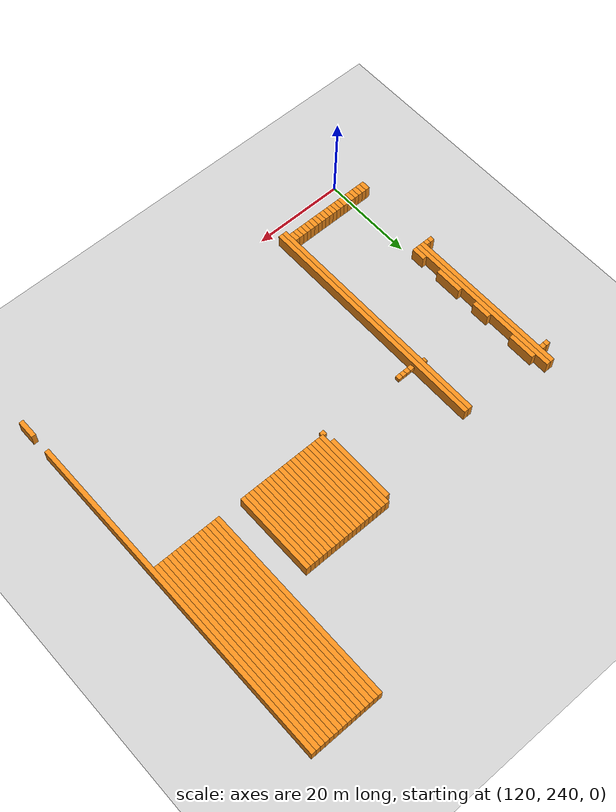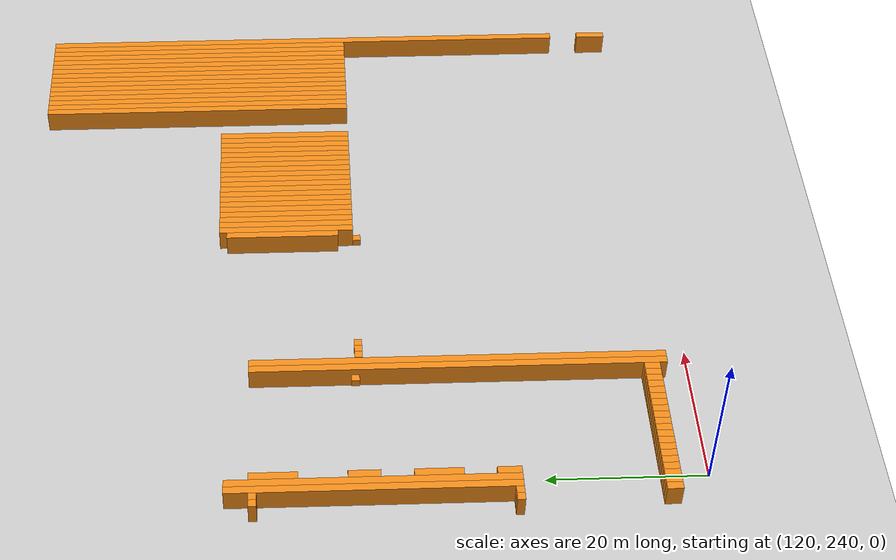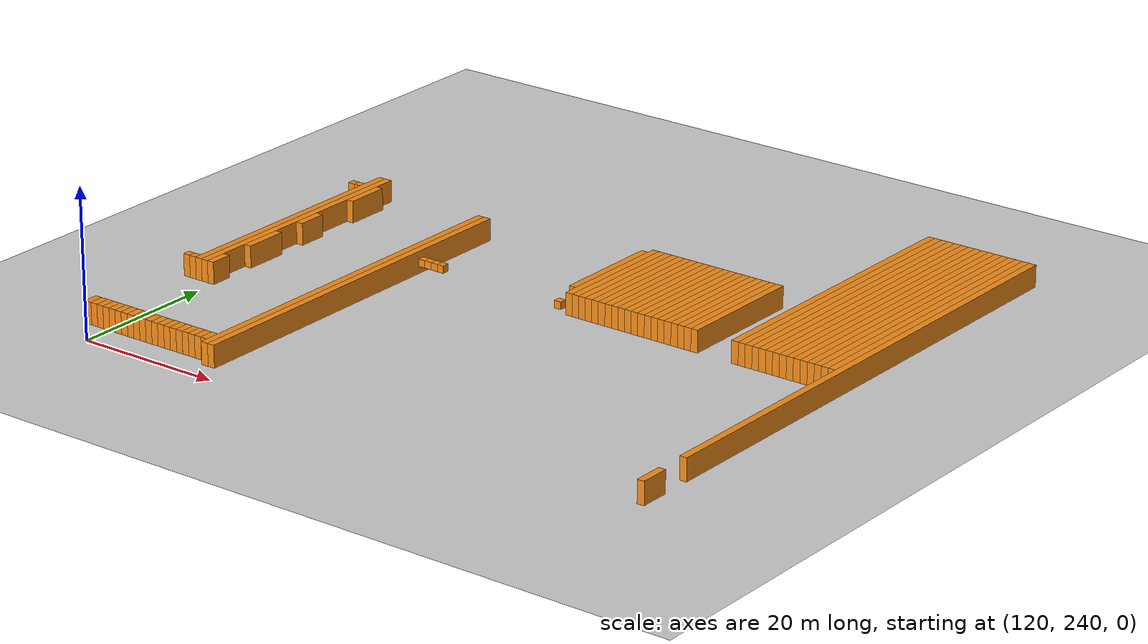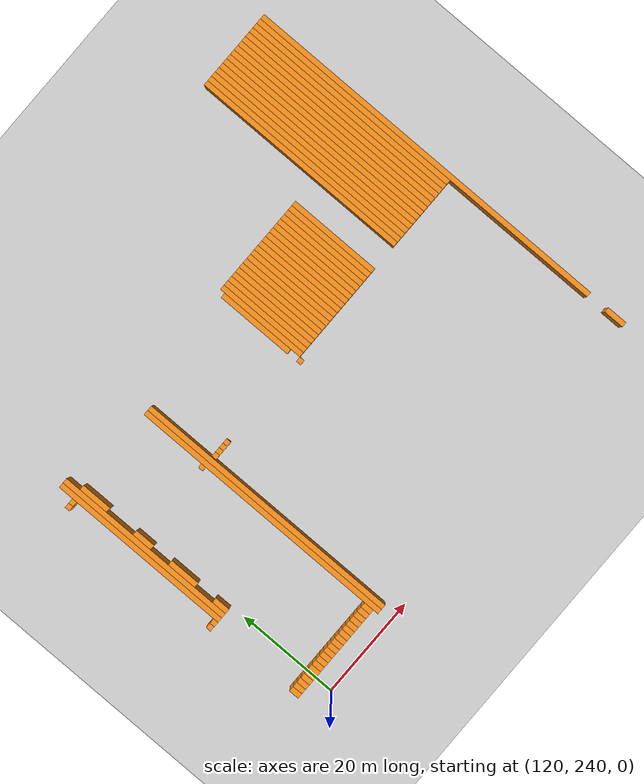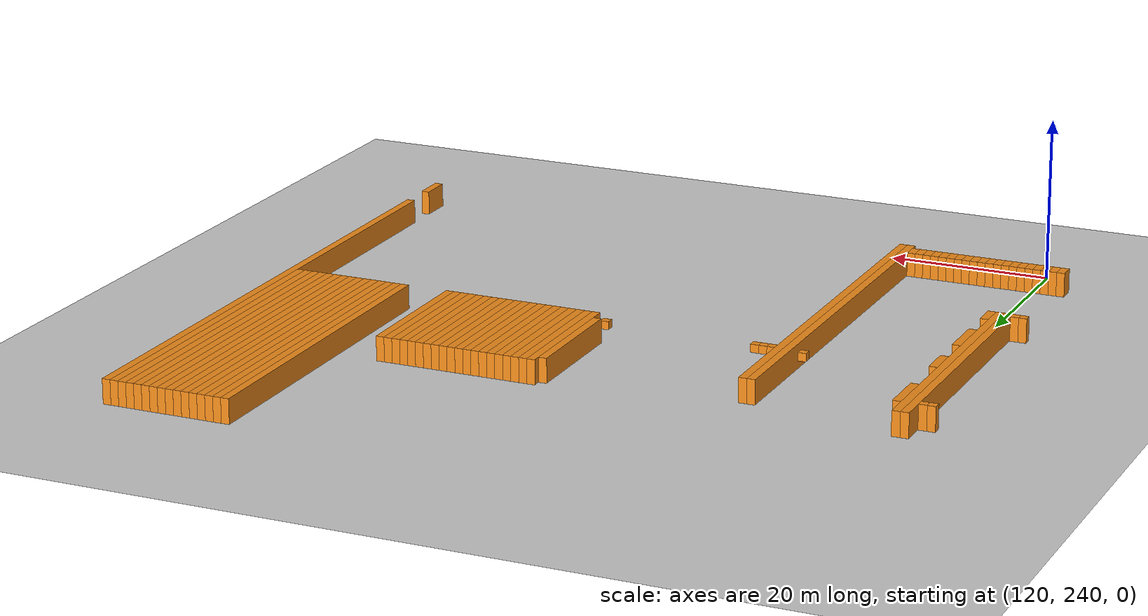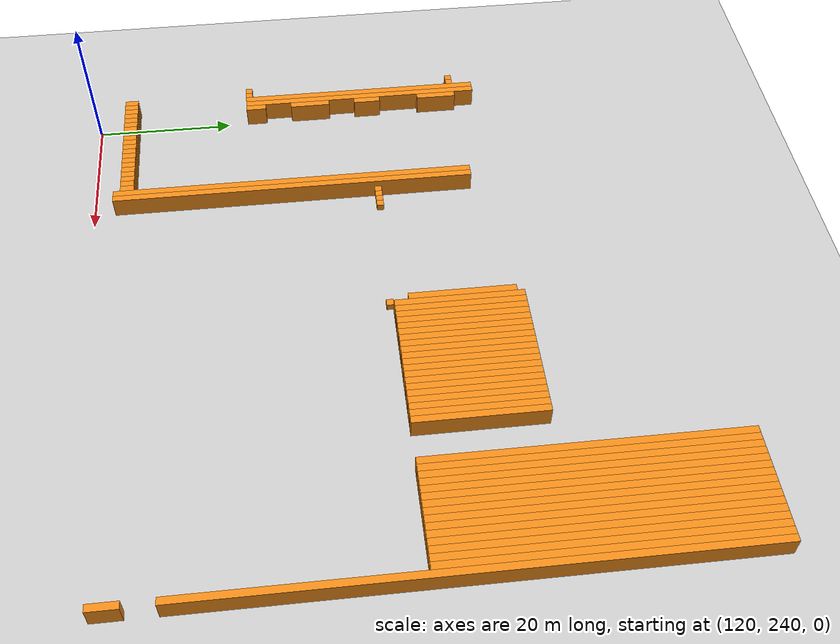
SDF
<sdf version="1.6">
 <world name="default">
  <include><uri>model://ground_plane</uri></include>
  <model name="unit_box_1274">
   <pose>115.50   263.50     1.50 0 0 0</pose>
   <static>1</static>
   <link name="link">
    <inertial>
     <mass>5000</mass>
     <inertia><ixx>200</ixx><ixy>0</ixy><ixz>0</ixz><iyy>200</iyy><iyz>0</iyz><izz>200</izz></inertia>
    </inertial>
    <collision name="collision"><geometry><box><size>1 1 3</size></box></geometry></collision>
    <visual name="visual">
     <geometry><box><size>1 1 3</size></box></geometry>
     <material>
      <script><name>Gazebo/Orange</name><uri>file://media/materials/scripts/gazebo.material</uri></script>
     </material>
    </visual>
   </link>
  </model>
  <model name="unit_box_1275">
   <pose>115.50   295.50     1.50 0 0 0</pose>
   <static>1</static>
   <link name="link">
    <inertial>
     <mass>5000</mass>
     <inertia><ixx>200</ixx><ixy>0</ixy><ixz>0</ixz><iyy>200</iyy><iyz>0</iyz><izz>200</izz></inertia>
    </inertial>
    <collision name="collision"><geometry><box><size>1 1 3</size></box></geometry></collision>
    <visual name="visual">
     <geometry><box><size>1 1 3</size></box></geometry>
     <material>
      <script><name>Gazebo/Orange</name><uri>file://media/materials/scripts/gazebo.material</uri></script>
     </material>
    </visual>
   </link>
  </model>
  <model name="unit_box_1287">
   <pose>116.50   245.00     1.50 0 0 0</pose>
   <static>1</static>
   <link name="link">
    <inertial>
     <mass>5000</mass>
     <inertia><ixx>200</ixx><ixy>0</ixy><ixz>0</ixz><iyy>200</iyy><iyz>0</iyz><izz>200</izz></inertia>
    </inertial>
    <collision name="collision"><geometry><box><size>1 2 3</size></box></geometry></collision>
    <visual name="visual">
     <geometry><box><size>1 2 3</size></box></geometry>
     <material>
      <script><name>Gazebo/Orange</name><uri>file://media/materials/scripts/gazebo.material</uri></script>
     </material>
    </visual>
   </link>
  </model>
  <model name="unit_box_1288">
   <pose>116.50   263.50     1.50 0 0 0</pose>
   <static>1</static>
   <link name="link">
    <inertial>
     <mass>5000</mass>
     <inertia><ixx>200</ixx><ixy>0</ixy><ixz>0</ixz><iyy>200</iyy><iyz>0</iyz><izz>200</izz></inertia>
    </inertial>
    <collision name="collision"><geometry><box><size>1 1 3</size></box></geometry></collision>
    <visual name="visual">
     <geometry><box><size>1 1 3</size></box></geometry>
     <material>
      <script><name>Gazebo/Orange</name><uri>file://media/materials/scripts/gazebo.material</uri></script>
     </material>
    </visual>
   </link>
  </model>
  <model name="unit_box_1289">
   <pose>116.50   295.50     1.50 0 0 0</pose>
   <static>1</static>
   <link name="link">
    <inertial>
     <mass>5000</mass>
     <inertia><ixx>200</ixx><ixy>0</ixy><ixz>0</ixz><iyy>200</iyy><iyz>0</iyz><izz>200</izz></inertia>
    </inertial>
    <collision name="collision"><geometry><box><size>1 1 3</size></box></geometry></collision>
    <visual name="visual">
     <geometry><box><size>1 1 3</size></box></geometry>
     <material>
      <script><name>Gazebo/Orange</name><uri>file://media/materials/scripts/gazebo.material</uri></script>
     </material>
    </visual>
   </link>
  </model>
  <model name="unit_box_1299">
   <pose>117.50   245.00     1.50 0 0 0</pose>
   <static>1</static>
   <link name="link">
    <inertial>
     <mass>5000</mass>
     <inertia><ixx>200</ixx><ixy>0</ixy><ixz>0</ixz><iyy>200</iyy><iyz>0</iyz><izz>200</izz></inertia>
    </inertial>
    <collision name="collision"><geometry><box><size>1 2 3</size></box></geometry></collision>
    <visual name="visual">
     <geometry><box><size>1 2 3</size></box></geometry>
     <material>
      <script><name>Gazebo/Orange</name><uri>file://media/materials/scripts/gazebo.material</uri></script>
     </material>
    </visual>
   </link>
  </model>
  <model name="unit_box_1300">
   <pose>117.50   281.00     1.50 0 0 0</pose>
   <static>1</static>
   <link name="link">
    <inertial>
     <mass>5000</mass>
     <inertia><ixx>200</ixx><ixy>0</ixy><ixz>0</ixz><iyy>200</iyy><iyz>0</iyz><izz>200</izz></inertia>
    </inertial>
    <collision name="collision"><geometry><box><size>1 36 3</size></box></geometry></collision>
    <visual name="visual">
     <geometry><box><size>1 36 3</size></box></geometry>
     <material>
      <script><name>Gazebo/Orange</name><uri>file://media/materials/scripts/gazebo.material</uri></script>
     </material>
    </visual>
   </link>
  </model>
  <model name="unit_box_1311">
   <pose>118.50   245.00     1.50 0 0 0</pose>
   <static>1</static>
   <link name="link">
    <inertial>
     <mass>5000</mass>
     <inertia><ixx>200</ixx><ixy>0</ixy><ixz>0</ixz><iyy>200</iyy><iyz>0</iyz><izz>200</izz></inertia>
    </inertial>
    <collision name="collision"><geometry><box><size>1 2 3</size></box></geometry></collision>
    <visual name="visual">
     <geometry><box><size>1 2 3</size></box></geometry>
     <material>
      <script><name>Gazebo/Orange</name><uri>file://media/materials/scripts/gazebo.material</uri></script>
     </material>
    </visual>
   </link>
  </model>
  <model name="unit_box_1312">
   <pose>118.50   281.00     1.50 0 0 0</pose>
   <static>1</static>
   <link name="link">
    <inertial>
     <mass>5000</mass>
     <inertia><ixx>200</ixx><ixy>0</ixy><ixz>0</ixz><iyy>200</iyy><iyz>0</iyz><izz>200</izz></inertia>
    </inertial>
    <collision name="collision"><geometry><box><size>1 36 3</size></box></geometry></collision>
    <visual name="visual">
     <geometry><box><size>1 36 3</size></box></geometry>
     <material>
      <script><name>Gazebo/Orange</name><uri>file://media/materials/scripts/gazebo.material</uri></script>
     </material>
    </visual>
   </link>
  </model>
  <model name="unit_box_1322">
   <pose>119.50   245.00     1.50 0 0 0</pose>
   <static>1</static>
   <link name="link">
    <inertial>
     <mass>5000</mass>
     <inertia><ixx>200</ixx><ixy>0</ixy><ixz>0</ixz><iyy>200</iyy><iyz>0</iyz><izz>200</izz></inertia>
    </inertial>
    <collision name="collision"><geometry><box><size>1 2 3</size></box></geometry></collision>
    <visual name="visual">
     <geometry><box><size>1 2 3</size></box></geometry>
     <material>
      <script><name>Gazebo/Orange</name><uri>file://media/materials/scripts/gazebo.material</uri></script>
     </material>
    </visual>
   </link>
  </model>
  <model name="unit_box_1323">
   <pose>119.50   264.50     1.50 0 0 0</pose>
   <static>1</static>
   <link name="link">
    <inertial>
     <mass>5000</mass>
     <inertia><ixx>200</ixx><ixy>0</ixy><ixz>0</ixz><iyy>200</iyy><iyz>0</iyz><izz>200</izz></inertia>
    </inertial>
    <collision name="collision"><geometry><box><size>1 3 3</size></box></geometry></collision>
    <visual name="visual">
     <geometry><box><size>1 3 3</size></box></geometry>
     <material>
      <script><name>Gazebo/Orange</name><uri>file://media/materials/scripts/gazebo.material</uri></script>
     </material>
    </visual>
   </link>
  </model>
  <model name="unit_box_1324">
   <pose>119.50   273.00     1.50 0 0 0</pose>
   <static>1</static>
   <link name="link">
    <inertial>
     <mass>5000</mass>
     <inertia><ixx>200</ixx><ixy>0</ixy><ixz>0</ixz><iyy>200</iyy><iyz>0</iyz><izz>200</izz></inertia>
    </inertial>
    <collision name="collision"><geometry><box><size>1 6 3</size></box></geometry></collision>
    <visual name="visual">
     <geometry><box><size>1 6 3</size></box></geometry>
     <material>
      <script><name>Gazebo/Orange</name><uri>file://media/materials/scripts/gazebo.material</uri></script>
     </material>
    </visual>
   </link>
  </model>
  <model name="unit_box_1325">
   <pose>119.50   282.00     1.50 0 0 0</pose>
   <static>1</static>
   <link name="link">
    <inertial>
     <mass>5000</mass>
     <inertia><ixx>200</ixx><ixy>0</ixy><ixz>0</ixz><iyy>200</iyy><iyz>0</iyz><izz>200</izz></inertia>
    </inertial>
    <collision name="collision"><geometry><box><size>1 4 3</size></box></geometry></collision>
    <visual name="visual">
     <geometry><box><size>1 4 3</size></box></geometry>
     <material>
      <script><name>Gazebo/Orange</name><uri>file://media/materials/scripts/gazebo.material</uri></script>
     </material>
    </visual>
   </link>
  </model>
  <model name="unit_box_1326">
   <pose>119.50   293.00     1.50 0 0 0</pose>
   <static>1</static>
   <link name="link">
    <inertial>
     <mass>5000</mass>
     <inertia><ixx>200</ixx><ixy>0</ixy><ixz>0</ixz><iyy>200</iyy><iyz>0</iyz><izz>200</izz></inertia>
    </inertial>
    <collision name="collision"><geometry><box><size>1 6 3</size></box></geometry></collision>
    <visual name="visual">
     <geometry><box><size>1 6 3</size></box></geometry>
     <material>
      <script><name>Gazebo/Orange</name><uri>file://media/materials/scripts/gazebo.material</uri></script>
     </material>
    </visual>
   </link>
  </model>
  <model name="unit_box_1336">
   <pose>120.50   245.00     1.50 0 0 0</pose>
   <static>1</static>
   <link name="link">
    <inertial>
     <mass>5000</mass>
     <inertia><ixx>200</ixx><ixy>0</ixy><ixz>0</ixz><iyy>200</iyy><iyz>0</iyz><izz>200</izz></inertia>
    </inertial>
    <collision name="collision"><geometry><box><size>1 2 3</size></box></geometry></collision>
    <visual name="visual">
     <geometry><box><size>1 2 3</size></box></geometry>
     <material>
      <script><name>Gazebo/Orange</name><uri>file://media/materials/scripts/gazebo.material</uri></script>
     </material>
    </visual>
   </link>
  </model>
  <model name="unit_box_1347">
   <pose>121.50   245.00     1.50 0 0 0</pose>
   <static>1</static>
   <link name="link">
    <inertial>
     <mass>5000</mass>
     <inertia><ixx>200</ixx><ixy>0</ixy><ixz>0</ixz><iyy>200</iyy><iyz>0</iyz><izz>200</izz></inertia>
    </inertial>
    <collision name="collision"><geometry><box><size>1 2 3</size></box></geometry></collision>
    <visual name="visual">
     <geometry><box><size>1 2 3</size></box></geometry>
     <material>
      <script><name>Gazebo/Orange</name><uri>file://media/materials/scripts/gazebo.material</uri></script>
     </material>
    </visual>
   </link>
  </model>
  <model name="unit_box_1356">
   <pose>122.50   245.00     1.50 0 0 0</pose>
   <static>1</static>
   <link name="link">
    <inertial>
     <mass>5000</mass>
     <inertia><ixx>200</ixx><ixy>0</ixy><ixz>0</ixz><iyy>200</iyy><iyz>0</iyz><izz>200</izz></inertia>
    </inertial>
    <collision name="collision"><geometry><box><size>1 2 3</size></box></geometry></collision>
    <visual name="visual">
     <geometry><box><size>1 2 3</size></box></geometry>
     <material>
      <script><name>Gazebo/Orange</name><uri>file://media/materials/scripts/gazebo.material</uri></script>
     </material>
    </visual>
   </link>
  </model>
  <model name="unit_box_1364">
   <pose>123.50   245.00     1.50 0 0 0</pose>
   <static>1</static>
   <link name="link">
    <inertial>
     <mass>5000</mass>
     <inertia><ixx>200</ixx><ixy>0</ixy><ixz>0</ixz><iyy>200</iyy><iyz>0</iyz><izz>200</izz></inertia>
    </inertial>
    <collision name="collision"><geometry><box><size>1 2 3</size></box></geometry></collision>
    <visual name="visual">
     <geometry><box><size>1 2 3</size></box></geometry>
     <material>
      <script><name>Gazebo/Orange</name><uri>file://media/materials/scripts/gazebo.material</uri></script>
     </material>
    </visual>
   </link>
  </model>
  <model name="unit_box_1370">
   <pose>124.50   245.00     1.50 0 0 0</pose>
   <static>1</static>
   <link name="link">
    <inertial>
     <mass>5000</mass>
     <inertia><ixx>200</ixx><ixy>0</ixy><ixz>0</ixz><iyy>200</iyy><iyz>0</iyz><izz>200</izz></inertia>
    </inertial>
    <collision name="collision"><geometry><box><size>1 2 3</size></box></geometry></collision>
    <visual name="visual">
     <geometry><box><size>1 2 3</size></box></geometry>
     <material>
      <script><name>Gazebo/Orange</name><uri>file://media/materials/scripts/gazebo.material</uri></script>
     </material>
    </visual>
   </link>
  </model>
  <model name="unit_box_1376">
   <pose>125.50   245.00     1.50 0 0 0</pose>
   <static>1</static>
   <link name="link">
    <inertial>
     <mass>5000</mass>
     <inertia><ixx>200</ixx><ixy>0</ixy><ixz>0</ixz><iyy>200</iyy><iyz>0</iyz><izz>200</izz></inertia>
    </inertial>
    <collision name="collision"><geometry><box><size>1 2 3</size></box></geometry></collision>
    <visual name="visual">
     <geometry><box><size>1 2 3</size></box></geometry>
     <material>
      <script><name>Gazebo/Orange</name><uri>file://media/materials/scripts/gazebo.material</uri></script>
     </material>
    </visual>
   </link>
  </model>
  <model name="unit_box_1382">
   <pose>126.50   245.00     1.50 0 0 0</pose>
   <static>1</static>
   <link name="link">
    <inertial>
     <mass>5000</mass>
     <inertia><ixx>200</ixx><ixy>0</ixy><ixz>0</ixz><iyy>200</iyy><iyz>0</iyz><izz>200</izz></inertia>
    </inertial>
    <collision name="collision"><geometry><box><size>1 2 3</size></box></geometry></collision>
    <visual name="visual">
     <geometry><box><size>1 2 3</size></box></geometry>
     <material>
      <script><name>Gazebo/Orange</name><uri>file://media/materials/scripts/gazebo.material</uri></script>
     </material>
    </visual>
   </link>
  </model>
  <model name="unit_box_1388">
   <pose>127.50   245.00     1.50 0 0 0</pose>
   <static>1</static>
   <link name="link">
    <inertial>
     <mass>5000</mass>
     <inertia><ixx>200</ixx><ixy>0</ixy><ixz>0</ixz><iyy>200</iyy><iyz>0</iyz><izz>200</izz></inertia>
    </inertial>
    <collision name="collision"><geometry><box><size>1 2 3</size></box></geometry></collision>
    <visual name="visual">
     <geometry><box><size>1 2 3</size></box></geometry>
     <material>
      <script><name>Gazebo/Orange</name><uri>file://media/materials/scripts/gazebo.material</uri></script>
     </material>
    </visual>
   </link>
  </model>
  <model name="unit_box_1394">
   <pose>128.50   245.00     1.50 0 0 0</pose>
   <static>1</static>
   <link name="link">
    <inertial>
     <mass>5000</mass>
     <inertia><ixx>200</ixx><ixy>0</ixy><ixz>0</ixz><iyy>200</iyy><iyz>0</iyz><izz>200</izz></inertia>
    </inertial>
    <collision name="collision"><geometry><box><size>1 2 3</size></box></geometry></collision>
    <visual name="visual">
     <geometry><box><size>1 2 3</size></box></geometry>
     <material>
      <script><name>Gazebo/Orange</name><uri>file://media/materials/scripts/gazebo.material</uri></script>
     </material>
    </visual>
   </link>
  </model>
  <model name="unit_box_1402">
   <pose>129.50   245.00     1.50 0 0 0</pose>
   <static>1</static>
   <link name="link">
    <inertial>
     <mass>5000</mass>
     <inertia><ixx>200</ixx><ixy>0</ixy><ixz>0</ixz><iyy>200</iyy><iyz>0</iyz><izz>200</izz></inertia>
    </inertial>
    <collision name="collision"><geometry><box><size>1 2 3</size></box></geometry></collision>
    <visual name="visual">
     <geometry><box><size>1 2 3</size></box></geometry>
     <material>
      <script><name>Gazebo/Orange</name><uri>file://media/materials/scripts/gazebo.material</uri></script>
     </material>
    </visual>
   </link>
  </model>
  <model name="unit_box_1408">
   <pose>130.50   245.00     1.50 0 0 0</pose>
   <static>1</static>
   <link name="link">
    <inertial>
     <mass>5000</mass>
     <inertia><ixx>200</ixx><ixy>0</ixy><ixz>0</ixz><iyy>200</iyy><iyz>0</iyz><izz>200</izz></inertia>
    </inertial>
    <collision name="collision"><geometry><box><size>1 2 3</size></box></geometry></collision>
    <visual name="visual">
     <geometry><box><size>1 2 3</size></box></geometry>
     <material>
      <script><name>Gazebo/Orange</name><uri>file://media/materials/scripts/gazebo.material</uri></script>
     </material>
    </visual>
   </link>
  </model>
  <model name="unit_box_1416">
   <pose>131.50   245.00     1.50 0 0 0</pose>
   <static>1</static>
   <link name="link">
    <inertial>
     <mass>5000</mass>
     <inertia><ixx>200</ixx><ixy>0</ixy><ixz>0</ixz><iyy>200</iyy><iyz>0</iyz><izz>200</izz></inertia>
    </inertial>
    <collision name="collision"><geometry><box><size>1 2 3</size></box></geometry></collision>
    <visual name="visual">
     <geometry><box><size>1 2 3</size></box></geometry>
     <material>
      <script><name>Gazebo/Orange</name><uri>file://media/materials/scripts/gazebo.material</uri></script>
     </material>
    </visual>
   </link>
  </model>
  <model name="unit_box_1423">
   <pose>132.50   245.00     1.50 0 0 0</pose>
   <static>1</static>
   <link name="link">
    <inertial>
     <mass>5000</mass>
     <inertia><ixx>200</ixx><ixy>0</ixy><ixz>0</ixz><iyy>200</iyy><iyz>0</iyz><izz>200</izz></inertia>
    </inertial>
    <collision name="collision"><geometry><box><size>1 2 3</size></box></geometry></collision>
    <visual name="visual">
     <geometry><box><size>1 2 3</size></box></geometry>
     <material>
      <script><name>Gazebo/Orange</name><uri>file://media/materials/scripts/gazebo.material</uri></script>
     </material>
    </visual>
   </link>
  </model>
  <model name="unit_box_1430">
   <pose>133.50   245.00     1.50 0 0 0</pose>
   <static>1</static>
   <link name="link">
    <inertial>
     <mass>5000</mass>
     <inertia><ixx>200</ixx><ixy>0</ixy><ixz>0</ixz><iyy>200</iyy><iyz>0</iyz><izz>200</izz></inertia>
    </inertial>
    <collision name="collision"><geometry><box><size>1 2 3</size></box></geometry></collision>
    <visual name="visual">
     <geometry><box><size>1 2 3</size></box></geometry>
     <material>
      <script><name>Gazebo/Orange</name><uri>file://media/materials/scripts/gazebo.material</uri></script>
     </material>
    </visual>
   </link>
  </model>
  <model name="unit_box_1437">
   <pose>134.50   245.00     1.50 0 0 0</pose>
   <static>1</static>
   <link name="link">
    <inertial>
     <mass>5000</mass>
     <inertia><ixx>200</ixx><ixy>0</ixy><ixz>0</ixz><iyy>200</iyy><iyz>0</iyz><izz>200</izz></inertia>
    </inertial>
    <collision name="collision"><geometry><box><size>1 2 3</size></box></geometry></collision>
    <visual name="visual">
     <geometry><box><size>1 2 3</size></box></geometry>
     <material>
      <script><name>Gazebo/Orange</name><uri>file://media/materials/scripts/gazebo.material</uri></script>
     </material>
    </visual>
   </link>
  </model>
  <model name="unit_box_1450">
   <pose>135.50   245.00     1.50 0 0 0</pose>
   <static>1</static>
   <link name="link">
    <inertial>
     <mass>5000</mass>
     <inertia><ixx>200</ixx><ixy>0</ixy><ixz>0</ixz><iyy>200</iyy><iyz>0</iyz><izz>200</izz></inertia>
    </inertial>
    <collision name="collision"><geometry><box><size>1 2 3</size></box></geometry></collision>
    <visual name="visual">
     <geometry><box><size>1 2 3</size></box></geometry>
     <material>
      <script><name>Gazebo/Orange</name><uri>file://media/materials/scripts/gazebo.material</uri></script>
     </material>
    </visual>
   </link>
  </model>
  <model name="unit_box_1451">
   <pose>135.50   282.50     1.50 0 0 0</pose>
   <static>1</static>
   <link name="link">
    <inertial>
     <mass>5000</mass>
     <inertia><ixx>200</ixx><ixy>0</ixy><ixz>0</ixz><iyy>200</iyy><iyz>0</iyz><izz>200</izz></inertia>
    </inertial>
    <collision name="collision"><geometry><box><size>1 1 1</size></box></geometry></collision>
    <visual name="visual">
     <geometry><box><size>1 1 1</size></box></geometry>
     <material>
      <script><name>Gazebo/Orange</name><uri>file://media/materials/scripts/gazebo.material</uri></script>
     </material>
    </visual>
   </link>
  </model>
  <model name="unit_box_1464">
   <pose>136.50   269.50     1.50 0 0 0</pose>
   <static>1</static>
   <link name="link">
    <inertial>
     <mass>5000</mass>
     <inertia><ixx>200</ixx><ixy>0</ixy><ixz>0</ixz><iyy>200</iyy><iyz>0</iyz><izz>200</izz></inertia>
    </inertial>
    <collision name="collision"><geometry><box><size>1 53 3</size></box></geometry></collision>
    <visual name="visual">
     <geometry><box><size>1 53 3</size></box></geometry>
     <material>
      <script><name>Gazebo/Orange</name><uri>file://media/materials/scripts/gazebo.material</uri></script>
     </material>
    </visual>
   </link>
  </model>
  <model name="unit_box_1478">
   <pose>137.50   269.50     1.50 0 0 0</pose>
   <static>1</static>
   <link name="link">
    <inertial>
     <mass>5000</mass>
     <inertia><ixx>200</ixx><ixy>0</ixy><ixz>0</ixz><iyy>200</iyy><iyz>0</iyz><izz>200</izz></inertia>
    </inertial>
    <collision name="collision"><geometry><box><size>1 53 3</size></box></geometry></collision>
    <visual name="visual">
     <geometry><box><size>1 53 3</size></box></geometry>
     <material>
      <script><name>Gazebo/Orange</name><uri>file://media/materials/scripts/gazebo.material</uri></script>
     </material>
    </visual>
   </link>
  </model>
  <model name="unit_box_1491">
   <pose>138.50   282.00     1.50 0 0 0</pose>
   <static>1</static>
   <link name="link">
    <inertial>
     <mass>5000</mass>
     <inertia><ixx>200</ixx><ixy>0</ixy><ixz>0</ixz><iyy>200</iyy><iyz>0</iyz><izz>200</izz></inertia>
    </inertial>
    <collision name="collision"><geometry><box><size>1 1 1</size></box></geometry></collision>
    <visual name="visual">
     <geometry><box><size>1 1 1</size></box></geometry>
     <material>
      <script><name>Gazebo/Orange</name><uri>file://media/materials/scripts/gazebo.material</uri></script>
     </material>
    </visual>
   </link>
  </model>
  <model name="unit_box_1504">
   <pose>139.50   282.00     1.50 0 0 0</pose>
   <static>1</static>
   <link name="link">
    <inertial>
     <mass>5000</mass>
     <inertia><ixx>200</ixx><ixy>0</ixy><ixz>0</ixz><iyy>200</iyy><iyz>0</iyz><izz>200</izz></inertia>
    </inertial>
    <collision name="collision"><geometry><box><size>1 1 1</size></box></geometry></collision>
    <visual name="visual">
     <geometry><box><size>1 1 1</size></box></geometry>
     <material>
      <script><name>Gazebo/Orange</name><uri>file://media/materials/scripts/gazebo.material</uri></script>
     </material>
    </visual>
   </link>
  </model>
  <model name="unit_box_1516">
   <pose>140.50   282.00     1.50 0 0 0</pose>
   <static>1</static>
   <link name="link">
    <inertial>
     <mass>5000</mass>
     <inertia><ixx>200</ixx><ixy>0</ixy><ixz>0</ixz><iyy>200</iyy><iyz>0</iyz><izz>200</izz></inertia>
    </inertial>
    <collision name="collision"><geometry><box><size>1 1 1</size></box></geometry></collision>
    <visual name="visual">
     <geometry><box><size>1 1 1</size></box></geometry>
     <material>
      <script><name>Gazebo/Orange</name><uri>file://media/materials/scripts/gazebo.material</uri></script>
     </material>
    </visual>
   </link>
  </model>
  <model name="unit_box_1528">
   <pose>141.50   282.00     1.50 0 0 0</pose>
   <static>1</static>
   <link name="link">
    <inertial>
     <mass>5000</mass>
     <inertia><ixx>200</ixx><ixy>0</ixy><ixz>0</ixz><iyy>200</iyy><iyz>0</iyz><izz>200</izz></inertia>
    </inertial>
    <collision name="collision"><geometry><box><size>1 1 1</size></box></geometry></collision>
    <visual name="visual">
     <geometry><box><size>1 1 1</size></box></geometry>
     <material>
      <script><name>Gazebo/Orange</name><uri>file://media/materials/scripts/gazebo.material</uri></script>
     </material>
    </visual>
   </link>
  </model>
  <model name="unit_box_1678">
   <pose>160.50   281.50     1.50 0 0 0</pose>
   <static>1</static>
   <link name="link">
    <inertial>
     <mass>5000</mass>
     <inertia><ixx>200</ixx><ixy>0</ixy><ixz>0</ixz><iyy>200</iyy><iyz>0</iyz><izz>200</izz></inertia>
    </inertial>
    <collision name="collision"><geometry><box><size>1 1 1</size></box></geometry></collision>
    <visual name="visual">
     <geometry><box><size>1 1 1</size></box></geometry>
     <material>
      <script><name>Gazebo/Orange</name><uri>file://media/materials/scripts/gazebo.material</uri></script>
     </material>
    </visual>
   </link>
  </model>
  <model name="unit_box_1679">
   <pose>160.50   291.50     1.50 0 0 0</pose>
   <static>1</static>
   <link name="link">
    <inertial>
     <mass>5000</mass>
     <inertia><ixx>200</ixx><ixy>0</ixy><ixz>0</ixz><iyy>200</iyy><iyz>0</iyz><izz>200</izz></inertia>
    </inertial>
    <collision name="collision"><geometry><box><size>1 15 3</size></box></geometry></collision>
    <visual name="visual">
     <geometry><box><size>1 15 3</size></box></geometry>
     <material>
      <script><name>Gazebo/Orange</name><uri>file://media/materials/scripts/gazebo.material</uri></script>
     </material>
    </visual>
   </link>
  </model>
  <model name="unit_box_1687">
   <pose>161.50   291.00     1.50 0 0 0</pose>
   <static>1</static>
   <link name="link">
    <inertial>
     <mass>5000</mass>
     <inertia><ixx>200</ixx><ixy>0</ixy><ixz>0</ixz><iyy>200</iyy><iyz>0</iyz><izz>200</izz></inertia>
    </inertial>
    <collision name="collision"><geometry><box><size>1 18 3</size></box></geometry></collision>
    <visual name="visual">
     <geometry><box><size>1 18 3</size></box></geometry>
     <material>
      <script><name>Gazebo/Orange</name><uri>file://media/materials/scripts/gazebo.material</uri></script>
     </material>
    </visual>
   </link>
  </model>
  <model name="unit_box_1695">
   <pose>162.50   291.00     1.50 0 0 0</pose>
   <static>1</static>
   <link name="link">
    <inertial>
     <mass>5000</mass>
     <inertia><ixx>200</ixx><ixy>0</ixy><ixz>0</ixz><iyy>200</iyy><iyz>0</iyz><izz>200</izz></inertia>
    </inertial>
    <collision name="collision"><geometry><box><size>1 18 3</size></box></geometry></collision>
    <visual name="visual">
     <geometry><box><size>1 18 3</size></box></geometry>
     <material>
      <script><name>Gazebo/Orange</name><uri>file://media/materials/scripts/gazebo.material</uri></script>
     </material>
    </visual>
   </link>
  </model>
  <model name="unit_box_1703">
   <pose>163.50   291.00     1.50 0 0 0</pose>
   <static>1</static>
   <link name="link">
    <inertial>
     <mass>5000</mass>
     <inertia><ixx>200</ixx><ixy>0</ixy><ixz>0</ixz><iyy>200</iyy><iyz>0</iyz><izz>200</izz></inertia>
    </inertial>
    <collision name="collision"><geometry><box><size>1 18 3</size></box></geometry></collision>
    <visual name="visual">
     <geometry><box><size>1 18 3</size></box></geometry>
     <material>
      <script><name>Gazebo/Orange</name><uri>file://media/materials/scripts/gazebo.material</uri></script>
     </material>
    </visual>
   </link>
  </model>
  <model name="unit_box_1711">
   <pose>164.50   291.00     1.50 0 0 0</pose>
   <static>1</static>
   <link name="link">
    <inertial>
     <mass>5000</mass>
     <inertia><ixx>200</ixx><ixy>0</ixy><ixz>0</ixz><iyy>200</iyy><iyz>0</iyz><izz>200</izz></inertia>
    </inertial>
    <collision name="collision"><geometry><box><size>1 18 3</size></box></geometry></collision>
    <visual name="visual">
     <geometry><box><size>1 18 3</size></box></geometry>
     <material>
      <script><name>Gazebo/Orange</name><uri>file://media/materials/scripts/gazebo.material</uri></script>
     </material>
    </visual>
   </link>
  </model>
  <model name="unit_box_1719">
   <pose>165.50   291.00     1.50 0 0 0</pose>
   <static>1</static>
   <link name="link">
    <inertial>
     <mass>5000</mass>
     <inertia><ixx>200</ixx><ixy>0</ixy><ixz>0</ixz><iyy>200</iyy><iyz>0</iyz><izz>200</izz></inertia>
    </inertial>
    <collision name="collision"><geometry><box><size>1 18 3</size></box></geometry></collision>
    <visual name="visual">
     <geometry><box><size>1 18 3</size></box></geometry>
     <material>
      <script><name>Gazebo/Orange</name><uri>file://media/materials/scripts/gazebo.material</uri></script>
     </material>
    </visual>
   </link>
  </model>
  <model name="unit_box_1726">
   <pose>166.50   291.00     1.50 0 0 0</pose>
   <static>1</static>
   <link name="link">
    <inertial>
     <mass>5000</mass>
     <inertia><ixx>200</ixx><ixy>0</ixy><ixz>0</ixz><iyy>200</iyy><iyz>0</iyz><izz>200</izz></inertia>
    </inertial>
    <collision name="collision"><geometry><box><size>1 18 3</size></box></geometry></collision>
    <visual name="visual">
     <geometry><box><size>1 18 3</size></box></geometry>
     <material>
      <script><name>Gazebo/Orange</name><uri>file://media/materials/scripts/gazebo.material</uri></script>
     </material>
    </visual>
   </link>
  </model>
  <model name="unit_box_1732">
   <pose>167.50   291.00     1.50 0 0 0</pose>
   <static>1</static>
   <link name="link">
    <inertial>
     <mass>5000</mass>
     <inertia><ixx>200</ixx><ixy>0</ixy><ixz>0</ixz><iyy>200</iyy><iyz>0</iyz><izz>200</izz></inertia>
    </inertial>
    <collision name="collision"><geometry><box><size>1 18 3</size></box></geometry></collision>
    <visual name="visual">
     <geometry><box><size>1 18 3</size></box></geometry>
     <material>
      <script><name>Gazebo/Orange</name><uri>file://media/materials/scripts/gazebo.material</uri></script>
     </material>
    </visual>
   </link>
  </model>
  <model name="unit_box_1738">
   <pose>168.50   291.00     1.50 0 0 0</pose>
   <static>1</static>
   <link name="link">
    <inertial>
     <mass>5000</mass>
     <inertia><ixx>200</ixx><ixy>0</ixy><ixz>0</ixz><iyy>200</iyy><iyz>0</iyz><izz>200</izz></inertia>
    </inertial>
    <collision name="collision"><geometry><box><size>1 18 3</size></box></geometry></collision>
    <visual name="visual">
     <geometry><box><size>1 18 3</size></box></geometry>
     <material>
      <script><name>Gazebo/Orange</name><uri>file://media/materials/scripts/gazebo.material</uri></script>
     </material>
    </visual>
   </link>
  </model>
  <model name="unit_box_1745">
   <pose>169.50   291.00     1.50 0 0 0</pose>
   <static>1</static>
   <link name="link">
    <inertial>
     <mass>5000</mass>
     <inertia><ixx>200</ixx><ixy>0</ixy><ixz>0</ixz><iyy>200</iyy><iyz>0</iyz><izz>200</izz></inertia>
    </inertial>
    <collision name="collision"><geometry><box><size>1 18 3</size></box></geometry></collision>
    <visual name="visual">
     <geometry><box><size>1 18 3</size></box></geometry>
     <material>
      <script><name>Gazebo/Orange</name><uri>file://media/materials/scripts/gazebo.material</uri></script>
     </material>
    </visual>
   </link>
  </model>
  <model name="unit_box_1752">
   <pose>170.50   291.00     1.50 0 0 0</pose>
   <static>1</static>
   <link name="link">
    <inertial>
     <mass>5000</mass>
     <inertia><ixx>200</ixx><ixy>0</ixy><ixz>0</ixz><iyy>200</iyy><iyz>0</iyz><izz>200</izz></inertia>
    </inertial>
    <collision name="collision"><geometry><box><size>1 18 3</size></box></geometry></collision>
    <visual name="visual">
     <geometry><box><size>1 18 3</size></box></geometry>
     <material>
      <script><name>Gazebo/Orange</name><uri>file://media/materials/scripts/gazebo.material</uri></script>
     </material>
    </visual>
   </link>
  </model>
  <model name="unit_box_1759">
   <pose>171.50   291.00     1.50 0 0 0</pose>
   <static>1</static>
   <link name="link">
    <inertial>
     <mass>5000</mass>
     <inertia><ixx>200</ixx><ixy>0</ixy><ixz>0</ixz><iyy>200</iyy><iyz>0</iyz><izz>200</izz></inertia>
    </inertial>
    <collision name="collision"><geometry><box><size>1 18 3</size></box></geometry></collision>
    <visual name="visual">
     <geometry><box><size>1 18 3</size></box></geometry>
     <material>
      <script><name>Gazebo/Orange</name><uri>file://media/materials/scripts/gazebo.material</uri></script>
     </material>
    </visual>
   </link>
  </model>
  <model name="unit_box_1766">
   <pose>172.50   291.00     1.50 0 0 0</pose>
   <static>1</static>
   <link name="link">
    <inertial>
     <mass>5000</mass>
     <inertia><ixx>200</ixx><ixy>0</ixy><ixz>0</ixz><iyy>200</iyy><iyz>0</iyz><izz>200</izz></inertia>
    </inertial>
    <collision name="collision"><geometry><box><size>1 18 3</size></box></geometry></collision>
    <visual name="visual">
     <geometry><box><size>1 18 3</size></box></geometry>
     <material>
      <script><name>Gazebo/Orange</name><uri>file://media/materials/scripts/gazebo.material</uri></script>
     </material>
    </visual>
   </link>
  </model>
  <model name="unit_box_1773">
   <pose>173.50   291.00     1.50 0 0 0</pose>
   <static>1</static>
   <link name="link">
    <inertial>
     <mass>5000</mass>
     <inertia><ixx>200</ixx><ixy>0</ixy><ixz>0</ixz><iyy>200</iyy><iyz>0</iyz><izz>200</izz></inertia>
    </inertial>
    <collision name="collision"><geometry><box><size>1 18 3</size></box></geometry></collision>
    <visual name="visual">
     <geometry><box><size>1 18 3</size></box></geometry>
     <material>
      <script><name>Gazebo/Orange</name><uri>file://media/materials/scripts/gazebo.material</uri></script>
     </material>
    </visual>
   </link>
  </model>
  <model name="unit_box_1780">
   <pose>174.50   291.00     1.50 0 0 0</pose>
   <static>1</static>
   <link name="link">
    <inertial>
     <mass>5000</mass>
     <inertia><ixx>200</ixx><ixy>0</ixy><ixz>0</ixz><iyy>200</iyy><iyz>0</iyz><izz>200</izz></inertia>
    </inertial>
    <collision name="collision"><geometry><box><size>1 18 3</size></box></geometry></collision>
    <visual name="visual">
     <geometry><box><size>1 18 3</size></box></geometry>
     <material>
      <script><name>Gazebo/Orange</name><uri>file://media/materials/scripts/gazebo.material</uri></script>
     </material>
    </visual>
   </link>
  </model>
  <model name="unit_box_1787">
   <pose>175.50   291.00     1.50 0 0 0</pose>
   <static>1</static>
   <link name="link">
    <inertial>
     <mass>5000</mass>
     <inertia><ixx>200</ixx><ixy>0</ixy><ixz>0</ixz><iyy>200</iyy><iyz>0</iyz><izz>200</izz></inertia>
    </inertial>
    <collision name="collision"><geometry><box><size>1 18 3</size></box></geometry></collision>
    <visual name="visual">
     <geometry><box><size>1 18 3</size></box></geometry>
     <material>
      <script><name>Gazebo/Orange</name><uri>file://media/materials/scripts/gazebo.material</uri></script>
     </material>
    </visual>
   </link>
  </model>
  <model name="unit_box_1794">
   <pose>176.50   291.00     1.50 0 0 0</pose>
   <static>1</static>
   <link name="link">
    <inertial>
     <mass>5000</mass>
     <inertia><ixx>200</ixx><ixy>0</ixy><ixz>0</ixz><iyy>200</iyy><iyz>0</iyz><izz>200</izz></inertia>
    </inertial>
    <collision name="collision"><geometry><box><size>1 18 3</size></box></geometry></collision>
    <visual name="visual">
     <geometry><box><size>1 18 3</size></box></geometry>
     <material>
      <script><name>Gazebo/Orange</name><uri>file://media/materials/scripts/gazebo.material</uri></script>
     </material>
    </visual>
   </link>
  </model>
  <model name="unit_box_1801">
   <pose>177.50   291.00     1.50 0 0 0</pose>
   <static>1</static>
   <link name="link">
    <inertial>
     <mass>5000</mass>
     <inertia><ixx>200</ixx><ixy>0</ixy><ixz>0</ixz><iyy>200</iyy><iyz>0</iyz><izz>200</izz></inertia>
    </inertial>
    <collision name="collision"><geometry><box><size>1 18 3</size></box></geometry></collision>
    <visual name="visual">
     <geometry><box><size>1 18 3</size></box></geometry>
     <material>
      <script><name>Gazebo/Orange</name><uri>file://media/materials/scripts/gazebo.material</uri></script>
     </material>
    </visual>
   </link>
  </model>
  <model name="unit_box_1808">
   <pose>178.50   291.00     1.50 0 0 0</pose>
   <static>1</static>
   <link name="link">
    <inertial>
     <mass>5000</mass>
     <inertia><ixx>200</ixx><ixy>0</ixy><ixz>0</ixz><iyy>200</iyy><iyz>0</iyz><izz>200</izz></inertia>
    </inertial>
    <collision name="collision"><geometry><box><size>1 18 3</size></box></geometry></collision>
    <visual name="visual">
     <geometry><box><size>1 18 3</size></box></geometry>
     <material>
      <script><name>Gazebo/Orange</name><uri>file://media/materials/scripts/gazebo.material</uri></script>
     </material>
    </visual>
   </link>
  </model>
  <model name="unit_box_1816">
   <pose>179.50   291.00     1.50 0 0 0</pose>
   <static>1</static>
   <link name="link">
    <inertial>
     <mass>5000</mass>
     <inertia><ixx>200</ixx><ixy>0</ixy><ixz>0</ixz><iyy>200</iyy><iyz>0</iyz><izz>200</izz></inertia>
    </inertial>
    <collision name="collision"><geometry><box><size>1 18 3</size></box></geometry></collision>
    <visual name="visual">
     <geometry><box><size>1 18 3</size></box></geometry>
     <material>
      <script><name>Gazebo/Orange</name><uri>file://media/materials/scripts/gazebo.material</uri></script>
     </material>
    </visual>
   </link>
  </model>
  <model name="unit_box_1824">
   <pose>180.50   291.00     1.50 0 0 0</pose>
   <static>1</static>
   <link name="link">
    <inertial>
     <mass>5000</mass>
     <inertia><ixx>200</ixx><ixy>0</ixy><ixz>0</ixz><iyy>200</iyy><iyz>0</iyz><izz>200</izz></inertia>
    </inertial>
    <collision name="collision"><geometry><box><size>1 18 3</size></box></geometry></collision>
    <visual name="visual">
     <geometry><box><size>1 18 3</size></box></geometry>
     <material>
      <script><name>Gazebo/Orange</name><uri>file://media/materials/scripts/gazebo.material</uri></script>
     </material>
    </visual>
   </link>
  </model>
  <model name="unit_box_1878">
   <pose>186.50   303.50     1.50 0 0 0</pose>
   <static>1</static>
   <link name="link">
    <inertial>
     <mass>5000</mass>
     <inertia><ixx>200</ixx><ixy>0</ixy><ixz>0</ixz><iyy>200</iyy><iyz>0</iyz><izz>200</izz></inertia>
    </inertial>
    <collision name="collision"><geometry><box><size>1 43 3</size></box></geometry></collision>
    <visual name="visual">
     <geometry><box><size>1 43 3</size></box></geometry>
     <material>
      <script><name>Gazebo/Orange</name><uri>file://media/materials/scripts/gazebo.material</uri></script>
     </material>
    </visual>
   </link>
  </model>
  <model name="unit_box_1886">
   <pose>187.50   303.50     1.50 0 0 0</pose>
   <static>1</static>
   <link name="link">
    <inertial>
     <mass>5000</mass>
     <inertia><ixx>200</ixx><ixy>0</ixy><ixz>0</ixz><iyy>200</iyy><iyz>0</iyz><izz>200</izz></inertia>
    </inertial>
    <collision name="collision"><geometry><box><size>1 43 3</size></box></geometry></collision>
    <visual name="visual">
     <geometry><box><size>1 43 3</size></box></geometry>
     <material>
      <script><name>Gazebo/Orange</name><uri>file://media/materials/scripts/gazebo.material</uri></script>
     </material>
    </visual>
   </link>
  </model>
  <model name="unit_box_1894">
   <pose>188.50   303.50     1.50 0 0 0</pose>
   <static>1</static>
   <link name="link">
    <inertial>
     <mass>5000</mass>
     <inertia><ixx>200</ixx><ixy>0</ixy><ixz>0</ixz><iyy>200</iyy><iyz>0</iyz><izz>200</izz></inertia>
    </inertial>
    <collision name="collision"><geometry><box><size>1 43 3</size></box></geometry></collision>
    <visual name="visual">
     <geometry><box><size>1 43 3</size></box></geometry>
     <material>
      <script><name>Gazebo/Orange</name><uri>file://media/materials/scripts/gazebo.material</uri></script>
     </material>
    </visual>
   </link>
  </model>
  <model name="unit_box_1902">
   <pose>189.50   303.50     1.50 0 0 0</pose>
   <static>1</static>
   <link name="link">
    <inertial>
     <mass>5000</mass>
     <inertia><ixx>200</ixx><ixy>0</ixy><ixz>0</ixz><iyy>200</iyy><iyz>0</iyz><izz>200</izz></inertia>
    </inertial>
    <collision name="collision"><geometry><box><size>1 43 3</size></box></geometry></collision>
    <visual name="visual">
     <geometry><box><size>1 43 3</size></box></geometry>
     <material>
      <script><name>Gazebo/Orange</name><uri>file://media/materials/scripts/gazebo.material</uri></script>
     </material>
    </visual>
   </link>
  </model>
  <model name="unit_box_1910">
   <pose>190.50   303.50     1.50 0 0 0</pose>
   <static>1</static>
   <link name="link">
    <inertial>
     <mass>5000</mass>
     <inertia><ixx>200</ixx><ixy>0</ixy><ixz>0</ixz><iyy>200</iyy><iyz>0</iyz><izz>200</izz></inertia>
    </inertial>
    <collision name="collision"><geometry><box><size>1 43 3</size></box></geometry></collision>
    <visual name="visual">
     <geometry><box><size>1 43 3</size></box></geometry>
     <material>
      <script><name>Gazebo/Orange</name><uri>file://media/materials/scripts/gazebo.material</uri></script>
     </material>
    </visual>
   </link>
  </model>
  <model name="unit_box_1918">
   <pose>191.50   303.50     1.50 0 0 0</pose>
   <static>1</static>
   <link name="link">
    <inertial>
     <mass>5000</mass>
     <inertia><ixx>200</ixx><ixy>0</ixy><ixz>0</ixz><iyy>200</iyy><iyz>0</iyz><izz>200</izz></inertia>
    </inertial>
    <collision name="collision"><geometry><box><size>1 43 3</size></box></geometry></collision>
    <visual name="visual">
     <geometry><box><size>1 43 3</size></box></geometry>
     <material>
      <script><name>Gazebo/Orange</name><uri>file://media/materials/scripts/gazebo.material</uri></script>
     </material>
    </visual>
   </link>
  </model>
  <model name="unit_box_1926">
   <pose>192.50   303.50     1.50 0 0 0</pose>
   <static>1</static>
   <link name="link">
    <inertial>
     <mass>5000</mass>
     <inertia><ixx>200</ixx><ixy>0</ixy><ixz>0</ixz><iyy>200</iyy><iyz>0</iyz><izz>200</izz></inertia>
    </inertial>
    <collision name="collision"><geometry><box><size>1 43 3</size></box></geometry></collision>
    <visual name="visual">
     <geometry><box><size>1 43 3</size></box></geometry>
     <material>
      <script><name>Gazebo/Orange</name><uri>file://media/materials/scripts/gazebo.material</uri></script>
     </material>
    </visual>
   </link>
  </model>
  <model name="unit_box_1935">
   <pose>193.50   303.50     1.50 0 0 0</pose>
   <static>1</static>
   <link name="link">
    <inertial>
     <mass>5000</mass>
     <inertia><ixx>200</ixx><ixy>0</ixy><ixz>0</ixz><iyy>200</iyy><iyz>0</iyz><izz>200</izz></inertia>
    </inertial>
    <collision name="collision"><geometry><box><size>1 43 3</size></box></geometry></collision>
    <visual name="visual">
     <geometry><box><size>1 43 3</size></box></geometry>
     <material>
      <script><name>Gazebo/Orange</name><uri>file://media/materials/scripts/gazebo.material</uri></script>
     </material>
    </visual>
   </link>
  </model>
  <model name="unit_box_1944">
   <pose>194.50   303.50     1.50 0 0 0</pose>
   <static>1</static>
   <link name="link">
    <inertial>
     <mass>5000</mass>
     <inertia><ixx>200</ixx><ixy>0</ixy><ixz>0</ixz><iyy>200</iyy><iyz>0</iyz><izz>200</izz></inertia>
    </inertial>
    <collision name="collision"><geometry><box><size>1 43 3</size></box></geometry></collision>
    <visual name="visual">
     <geometry><box><size>1 43 3</size></box></geometry>
     <material>
      <script><name>Gazebo/Orange</name><uri>file://media/materials/scripts/gazebo.material</uri></script>
     </material>
    </visual>
   </link>
  </model>
  <model name="unit_box_1953">
   <pose>195.50   303.50     1.50 0 0 0</pose>
   <static>1</static>
   <link name="link">
    <inertial>
     <mass>5000</mass>
     <inertia><ixx>200</ixx><ixy>0</ixy><ixz>0</ixz><iyy>200</iyy><iyz>0</iyz><izz>200</izz></inertia>
    </inertial>
    <collision name="collision"><geometry><box><size>1 43 3</size></box></geometry></collision>
    <visual name="visual">
     <geometry><box><size>1 43 3</size></box></geometry>
     <material>
      <script><name>Gazebo/Orange</name><uri>file://media/materials/scripts/gazebo.material</uri></script>
     </material>
    </visual>
   </link>
  </model>
  <model name="unit_box_1962">
   <pose>196.50   303.50     1.50 0 0 0</pose>
   <static>1</static>
   <link name="link">
    <inertial>
     <mass>5000</mass>
     <inertia><ixx>200</ixx><ixy>0</ixy><ixz>0</ixz><iyy>200</iyy><iyz>0</iyz><izz>200</izz></inertia>
    </inertial>
    <collision name="collision"><geometry><box><size>1 43 3</size></box></geometry></collision>
    <visual name="visual">
     <geometry><box><size>1 43 3</size></box></geometry>
     <material>
      <script><name>Gazebo/Orange</name><uri>file://media/materials/scripts/gazebo.material</uri></script>
     </material>
    </visual>
   </link>
  </model>
  <model name="unit_box_1971">
   <pose>197.50   303.50     1.50 0 0 0</pose>
   <static>1</static>
   <link name="link">
    <inertial>
     <mass>5000</mass>
     <inertia><ixx>200</ixx><ixy>0</ixy><ixz>0</ixz><iyy>200</iyy><iyz>0</iyz><izz>200</izz></inertia>
    </inertial>
    <collision name="collision"><geometry><box><size>1 43 3</size></box></geometry></collision>
    <visual name="visual">
     <geometry><box><size>1 43 3</size></box></geometry>
     <material>
      <script><name>Gazebo/Orange</name><uri>file://media/materials/scripts/gazebo.material</uri></script>
     </material>
    </visual>
   </link>
  </model>
  <model name="unit_box_1980">
   <pose>198.50   303.50     1.50 0 0 0</pose>
   <static>1</static>
   <link name="link">
    <inertial>
     <mass>5000</mass>
     <inertia><ixx>200</ixx><ixy>0</ixy><ixz>0</ixz><iyy>200</iyy><iyz>0</iyz><izz>200</izz></inertia>
    </inertial>
    <collision name="collision"><geometry><box><size>1 43 3</size></box></geometry></collision>
    <visual name="visual">
     <geometry><box><size>1 43 3</size></box></geometry>
     <material>
      <script><name>Gazebo/Orange</name><uri>file://media/materials/scripts/gazebo.material</uri></script>
     </material>
    </visual>
   </link>
  </model>
  <model name="unit_box_1989">
   <pose>199.50   303.50     1.50 0 0 0</pose>
   <static>1</static>
   <link name="link">
    <inertial>
     <mass>5000</mass>
     <inertia><ixx>200</ixx><ixy>0</ixy><ixz>0</ixz><iyy>200</iyy><iyz>0</iyz><izz>200</izz></inertia>
    </inertial>
    <collision name="collision"><geometry><box><size>1 43 3</size></box></geometry></collision>
    <visual name="visual">
     <geometry><box><size>1 43 3</size></box></geometry>
     <material>
      <script><name>Gazebo/Orange</name><uri>file://media/materials/scripts/gazebo.material</uri></script>
     </material>
    </visual>
   </link>
  </model>
  <model name="unit_box_1998">
   <pose>200.50   303.50     1.50 0 0 0</pose>
   <static>1</static>
   <link name="link">
    <inertial>
     <mass>5000</mass>
     <inertia><ixx>200</ixx><ixy>0</ixy><ixz>0</ixz><iyy>200</iyy><iyz>0</iyz><izz>200</izz></inertia>
    </inertial>
    <collision name="collision"><geometry><box><size>1 43 3</size></box></geometry></collision>
    <visual name="visual">
     <geometry><box><size>1 43 3</size></box></geometry>
     <material>
      <script><name>Gazebo/Orange</name><uri>file://media/materials/scripts/gazebo.material</uri></script>
     </material>
    </visual>
   </link>
  </model>
  <model name="unit_box_2010">
   <pose>201.50   245.00     1.50 0 0 0</pose>
   <static>1</static>
   <link name="link">
    <inertial>
     <mass>5000</mass>
     <inertia><ixx>200</ixx><ixy>0</ixy><ixz>0</ixz><iyy>200</iyy><iyz>0</iyz><izz>200</izz></inertia>
    </inertial>
    <collision name="collision"><geometry><box><size>1 4 3</size></box></geometry></collision>
    <visual name="visual">
     <geometry><box><size>1 4 3</size></box></geometry>
     <material>
      <script><name>Gazebo/Orange</name><uri>file://media/materials/scripts/gazebo.material</uri></script>
     </material>
    </visual>
   </link>
  </model>
  <model name="unit_box_2011">
   <pose>201.50   288.00     1.50 0 0 0</pose>
   <static>1</static>
   <link name="link">
    <inertial>
     <mass>5000</mass>
     <inertia><ixx>200</ixx><ixy>0</ixy><ixz>0</ixz><iyy>200</iyy><iyz>0</iyz><izz>200</izz></inertia>
    </inertial>
    <collision name="collision"><geometry><box><size>1 74 3</size></box></geometry></collision>
    <visual name="visual">
     <geometry><box><size>1 74 3</size></box></geometry>
     <material>
      <script><name>Gazebo/Orange</name><uri>file://media/materials/scripts/gazebo.material</uri></script>
     </material>
    </visual>
   </link>
  </model>
 </world>
</sdf>
